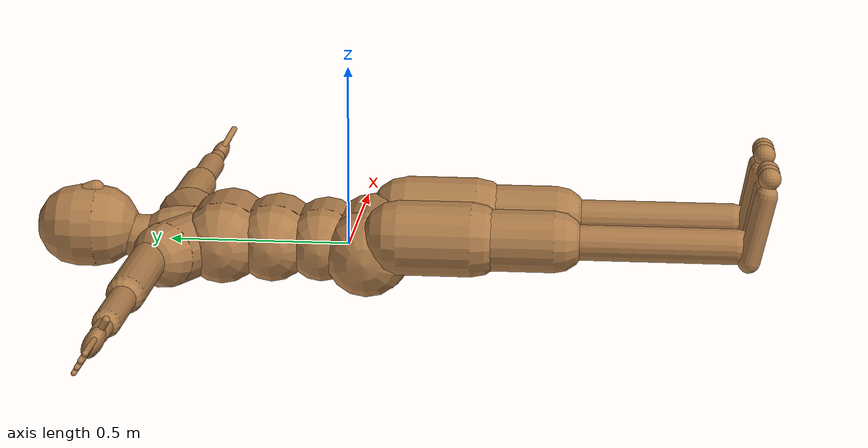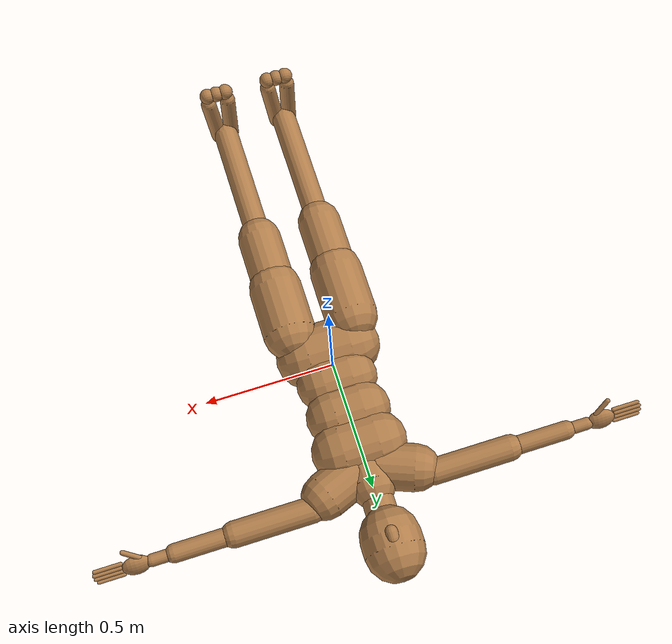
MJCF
<!--
  The CMU Humanoid from dm_control, V2020 and position-controlled, adapted for AMASS
  (change rest pose (i.e., joints in "0" position) and a few rotation axes).
-->
<mujoco model="humanoid_AMASS">
  <compiler boundmass="1e-05" boundinertia="1e-11" coordinate="local" angle="radian" eulerseq="xyz"/>
  <size njmax="500" nconmax="500"/>

  <option timestep=".005"/>
  <custom>
    <numeric name="frameskip" data="6"/>
  </custom>
  <visual>
    <quality shadowsize="8192"/>
    <global offheight="1024" offwidth="1024"/>
  </visual>

  <asset>
    <material name="self" rgba=".7 .5 .3 1.0"/>
  </asset>

  <default>
    <joint limited="true" solimplimit="0 0.99 0.01" stiffness="1" armature=".01" damping="1"/>
    <geom size="0.03 0 0" condim="1" friction="0.7 0.005 0.0001" solref="0.015 1" solimp="0.99 0.99 0.003" density="674.0490479671504"/>
    <general forcelimited="true" ctrllimited="true" ctrlrange="-1 1"/>
    <default class="humanoid">
      <geom type="capsule" material="self" group="2"/>
      <default class="stiff_medium">
        <joint stiffness="10" damping="2"/>
      </default>
      <default class="stiff_medium_higher">
        <joint stiffness="50" damping="4"/>
      </default>
      <default class="stiff_high">
        <joint stiffness="200" damping="5"/>
      </default>
      <default class="sensor_site">
        <site type="sphere" size="0.01" group="4" rgba="1 0 0 .5"/>
      </default>
      <default class="skeleton_site">
        <site type="sphere" size="0.03" group="1" rgba="1 0 0 .0"/>
      </default>
      <default class="joint_site">
        <site type="sphere" size="0.03" group="1" rgba="0 1 0 .0"/>
      </default>
      <default class="contact">
        <geom condim="3" friction="1. 0.005 0.0001" solref="0.015 1" solimp="0.98 0.98 0.001" priority="1"/>
      </default>
    </default>
  </default>

  <worldbody>
    <body name="torso" childclass="humanoid">
      <camera name="track" mode="trackcom" pos="0 -4 0" xyaxes="1 0 0 0 0 1"/>
      <camera name="track2" mode="trackcom" pos="3 -3 0" xyaxes="1 1 0 0 0 1"/>
      <camera name="track3" mode="trackcom" pos="3 0 0" xyaxes="0 1 0 0 0 1"/>
      <camera name="bodycam" pos="0 .3 .1" xyaxes="-1 0 0 0 1 0" fovy="80"/>
      <freejoint name="root"/>
      <site name="j_root" class="joint_site"/>
      <site name="root" size=".01" rgba="0.5 0.5 0.5 0"/>
      <geom name="torso" size="0.12 0.084" pos="0 -0.06 0" quat="1 0 -1 0"/>
      <body name="lhipjoint">
        <geom name="lhipjoint" size="0.0095999999999999992 0.026248356" density="674.0490479671504" pos="0.0611622 -0.055084439999999998 0.029667599999999995" quat="0.57079999999999997 -0.56660200000000005 -0.59426400000000001 0"/>
        <body name="lfemur" pos="0.1223244 -0.11016888 0.059335319999999997">
          <joint name="lfemurrz" class="stiff_medium" pos="0 0 0" axis="0 0 1" range="-1.0471999999999999 1.22173" damping="10.0"/>
          <joint name="lfemurry" class="stiff_medium" pos="0 0 0" axis="0 1 0" range="-1.22173 1.22173" damping="10.0"/>
          <joint name="lfemurrx" class="stiff_medium" pos="0 0 0" axis="1 0 0" range="-2.7925300000000002 0.34906599999999999" damping="15.0"/>
          <site name="j_lhip" class="joint_site"/>
          <geom name="lfemur_upper" size="0.10200000000000001 0.099600000000000008" mass="0.0" pos="0 -0.13856760000000001 0" quat="0.69636399999999998 -0.69636399999999998 -0.12278799999999999 -0.12278799999999999"/>
          <geom name="lfemur" size="0.084000000000000005 0.21867119999999998" density="674.0490479671504" pos="0 -0.24296759999999998 0" quat="0.69636399999999998 -0.69636399999999998 -0.12278799999999999 -0.12278799999999999"/>
          <body name="ltibia" pos="0 -0.48593399999999998 0">
            <joint name="ltibiarx" pos="0 0 0" axis="1 0 0" range="0.01 2.96706" damping="8.0"/>
            <site name="j_lknee" class="joint_site"/>
            <geom name="ltibia" size="0.048000000000000001 0.21907368000000002" density="674.0490479671504" pos="0 -0.2434152 0" quat="0.69636399999999998 -0.69636399999999998 -0.12278799999999999 -0.12278799999999999"/>
            <body name="lfoot" pos="0 -0.49883159999999993 0" quat="1 -1 0 0">
              <site name="lfoot_touch" class="sensor_site" type="capsule" size="0.029999999999999999 0.012" pos="0 0.024 -0.017999999999999999" zaxis="1 0 0"/>
              <joint name="lfootrz" class="stiff_medium" pos="0 0 0" axis="0 0 1" range="-1.22173 0.34906599999999999" damping="3.0"/>
              <joint name="lfootrx" class="stiff_medium" pos="0 0 0" axis="1 0 0" range="-0.78539800000000004 0.80000000000000004" damping="6.0"/>
              <site name="j_lankle" class="joint_site"/>
              <geom name="lfoot" class="contact" size="0.029999999999999999 0.096000000000000002" density="674.0490479671504" pos="-0.03239999700072 -0.059999999999999998 -0.01366536" quat="0.76725516000000005 -0.64051113999999998 0.023064870000000001 -0.023065829999999999"/>
              <geom name="lfoot_ch" class="contact" size="0.029999999999999999 0.096000000000000002" density="674.0490479671504" pos="0.032400002999279996 -0.059999999999999998 -0.01366536" quat="0.72887265999999995 -0.59399462000000003 -0.24074282999999999 -0.2407425"/>
              <body name="ltoes" pos="0 -0.18764640000000002 -0.027330719999999999">
                <joint name="ltoesrx" pos="0 0 0" axis="1 0 0" range="-1.5708 0.34906599999999999" damping="1.0"/>
                <site name="j_ltoe" class="joint_site"/>
                <geom name="ltoes0" class="contact" type="sphere" size="0.029999999999999999" density="674.0490479671504" pos="0 -0.012 -0.012"/>
                <geom name="ltoes1" class="contact" type="sphere" size="0.029999999999999999" density="674.0490479671504" pos="0.035999999999999997 -0.012 -0.012"/>
                <geom name="ltoes2" class="contact" type="sphere" size="0.029999999999999999" density="674.0490479671504" pos="-0.035999999999999997 -0.012 -0.012"/>
                <site name="ltoes_touch" class="sensor_site" type="capsule" size="0.029999999999999999 0.035999999999999997" pos="0 -0.012 -0.024" zaxis="1 0 0"/>
              </body>
            </body>
          </body>
        </body>
      </body>
      <body name="rhipjoint">
        <geom name="rhipjoint" size="0.0095999999999999992 0.026248356" density="674.0490479671504" pos="-0.0611622 -0.055084439999999998 0.029667599999999995" quat="0.57485600000000003 -0.54759400000000003 0.60801400000000005 0"/>
        <body name="rfemur" pos="-0.1223244 -0.11016888 0.059335319999999997">
          <joint name="rfemurrz" class="stiff_medium" pos="0 0 0" axis="0 0 1" range="-1.22173 1.0471999999999999" damping="10.0"/>
          <joint name="rfemurry" class="stiff_medium" pos="0 0 0" axis="0 1 0" range="-1.22173 1.22173" damping="10.0"/>
          <joint name="rfemurrx" class="stiff_medium" pos="0 0 0" axis="1 0 0" range="-2.7925300000000002 0.34906599999999999" damping="15.0"/>
          <site name="j_rhip" class="joint_site"/>
          <geom name="rfemur_upper" size="0.10200000000000001 0.099600000000000008" mass="0.0" pos="0 -0.13856760000000001 0" quat="0.69636399999999998 -0.69636399999999998 0.12278799999999999 0.12278799999999999"/>
          <geom name="rfemur" size="0.084000000000000005 0.21867119999999998" density="674.0490479671504" pos="0 -0.24296759999999998 0" quat="0.69636399999999998 -0.69636399999999998 0.12278799999999999 0.12278799999999999"/>
          <body name="rtibia" pos="0 -0.48593399999999998 0">
            <joint name="rtibiarx" pos="0 0 0" axis="1 0 0" range="0.01 2.96706" damping="8.0"/>
            <site name="j_rknee" class="joint_site"/>
            <geom name="rtibia" size="0.048000000000000001 0.21907368000000002" density="674.0490479671504" pos="0 -0.2434152 0" quat="0.69636399999999998 -0.69636399999999998 0.12278799999999999 0.12278799999999999"/>
            <body name="rfoot" pos="0 -0.49883159999999993 0" quat="0.70710700000000004 -0.70710700000000004 0 0">
              <site name="rfoot_touch" class="sensor_site" type="capsule" size="0.029999999999999999 0.012" pos="0 0.024 -0.017999999999999999" zaxis="1 0 0"/>
              <joint name="rfootrz" class="stiff_medium" pos="0 0 0" axis="0 0 1" range="-0.34906599999999999 1.22173" damping="3.0"/>
              <joint name="rfootrx" class="stiff_medium" pos="0 0 0" axis="1 0 0" range="-0.78539800000000004 0.80000000000000004" damping="6.0"/>
              <site name="j_rankle" class="joint_site"/>
              <geom name="rfoot" class="contact" size="0.029999999999999999 0.096000000000000002" density="674.0490479671504" pos="-0.032399995837919998 -0.059999999999999998 -0.01366536" quat="0.73520686999999996 -0.58633522999999999 0.24050108000000001 0.24050078999999999"/>
              <geom name="rfoot_ch" class="contact" size="0.029999999999999999 0.096000000000000002" density="674.0490479671504" pos="0.032400004162079998 -0.059999999999999998 -0.01366536" quat="0.77312468999999995 -0.63323099999999999 -0.025458459999999999 0.025458359999999999"/>
              <body name="rtoes" pos="0 -0.18764640000000002 -0.027330719999999999">
                <joint name="rtoesrx" pos="0 0 0" axis="1 0 0" range="-1.5708 0.34906599999999999" damping="1.0"/>
                <site name="j_rtoe" class="joint_site"/>
                <geom name="rtoes0" class="contact" type="sphere" size="0.029999999999999999" density="674.0490479671504" pos="0 -0.012 -0.012"/>
                <geom name="rtoes1" class="contact" type="sphere" size="0.029999999999999999" density="674.0490479671504" pos="0.035999999999999997 -0.012 -0.012"/>
                <geom name="rtoes2" class="contact" type="sphere" size="0.029999999999999999" density="674.0490479671504" pos="-0.035999999999999997 -0.012 -0.012"/>
                <site name="rtoes_touch" class="sensor_site" type="capsule" size="0.029999999999999999 0.035999999999999997" pos="0 -0.012 -0.024" zaxis="1 0 0"/>
              </body>
            </body>
          </body>
        </body>
      </body>
      <body name="lowerback">
        <joint name="lowerbackrz" class="stiff_high" pos="0 0 0" axis="0 0 1" range="-0.52359900000000004 0.52359900000000004" damping="20.0"/>
        <joint name="lowerbackry" class="stiff_high" pos="0 0 0" axis="0 1 0" range="-0.52359900000000004 0.52359900000000004" damping="20.0"/>
        <joint name="lowerbackrx" class="stiff_medium" pos="0 0 0" axis="1 0 0" range="-0.34906599999999999 0.78539800000000004" damping="15.0"/>
        <site name="j_lowerback" class="joint_site"/>
        <geom name="lowerback" size="0.10200000000000001 0.054480192000000004" density="674.0490479671504" pos="0.0033951719999999997 0.067927799999999997 0.012" quat="1 0 1 0"/>
        <body name="upperback" pos="0.00067903439999999994 0.13585559999999999 -0.0096635759999999984">
          <joint name="upperbackrz" class="stiff_high" pos="0 0 0" axis="0 0 1" range="-0.52359900000000004 0.52359900000000004" damping="12.0"/>
          <joint name="upperbackry" class="stiff_high" pos="0 0 0" axis="0 1 0" range="-0.52359900000000004 0.52359900000000004" damping="8.0"/>
          <joint name="upperbackrx" class="stiff_medium" pos="0 0 0" axis="1 0 0" range="-0.34906599999999999 0.78539800000000004" damping="15.0"/>
          <site name="j_upperback" class="joint_site"/>
          <geom name="upperback" size="0.108 0.054511391999999999" density="674.0490479671504" pos="0.00030751680000000003 0.068136240000000001 0.024" quat="1 0 1 0"/>
          <body name="thorax" pos="0.00061503360000000006 0.13627199999999998 0.0011241852000000001">
            <joint name="thoraxrz" class="stiff_high" pos="0 0 0" axis="0 0 1" range="-0.52359900000000004 0.52359900000000004" damping="12.0"/>
            <joint name="thoraxry" class="stiff_high" pos="0 0 0" axis="0 1 0" range="-0.52359900000000004 0.52359900000000004" damping="8.0"/>
            <joint name="thoraxrx" class="stiff_medium" pos="0 0 0" axis="1 0 0" range="-0.34906599999999999 0.78539800000000004" damping="15.0"/>
            <site name="j_chest" class="joint_site"/>
            <geom name="thorax" size="0.11399999999999999 0.068424719999999994" density="674.0490479671504" pos="0 0.068366999999999997 0.024" quat="1 0 1 0"/>
            <body name="lowerneck" pos="0 0.13673399999999999 0.0056164439999999991">
              <joint name="lowerneckrz" class="stiff_medium_higher" pos="0 0 0" axis="0 0 1" range="-0.52359900000000004 0.52359900000000004" damping="20.0"/>
              <joint name="lowerneckry" class="stiff_medium_higher" pos="0 0 0" axis="0 1 0" range="-0.52359900000000004 0.52359900000000004" damping="20.0"/>
              <joint name="lowerneckrx" class="stiff_medium_higher" pos="0 0 0" axis="1 0 0" range="-0.34906599999999999 0.78539800000000004" damping="20.0"/>
              <site name="j_lowerneck" class="joint_site"/>
              <geom name="lowerneck" size="0.089999999999999997 0.027350699999999999" density="674.0490479671504" pos="-0.001980852 0.054288119999999995 0.0064123079999999994" quat="1 1 0 0"/>
              <body name="upperneck" pos="-0.0039617159999999997 0.10857611999999998 0.01282464">
                <joint name="upperneckrz" class="stiff_medium_higher" pos="0 0 0" axis="0 0 1" range="-0.52359900000000004 0.52359900000000004" damping="10.0"/>
                <joint name="upperneckry" class="stiff_medium_higher" pos="0 0 0" axis="0 1 0" range="-0.52359900000000004 0.52359900000000004" damping="10.0"/>
                <joint name="upperneckrx" class="stiff_medium_higher" pos="0 0 0" axis="1 0 0" range="-0.34906599999999999 0.78539800000000004" damping="10.0"/>
                <site name="j_upperneck" class="joint_site"/>
                <geom name="upperneck" size="0.059999999999999998 0.02703264" density="674.0490479671504" pos="0.00060105 0.053994719999999996 -0.0026957280000000001" quat="1 1 0 0"/>
                <body name="head" pos="0.0012021 0.156 -0.0053914560000000002">
                  <camera name="egocentric" fovy="80.0" pos="0 0 0" xyaxes="-1 0 0 0 1 0"/>
                  <joint name="headrz" class="stiff_medium_higher" pos="0 0 0" axis="0 0 1" range="-0.52359900000000004 0.52359900000000004" damping="2.0"/>
                  <joint name="headry" class="stiff_medium_higher" pos="0 0 0" axis="0 1 0" range="-0.52359900000000004 0.52359900000000004" damping="2.0"/>
                  <joint name="headrx" class="stiff_medium_higher" pos="0 0 0" axis="1 0 0" range="-0.34906599999999999 0.78539800000000004" damping="2.0"/>
                  <geom name="head" size="0.11399999999999999 0.028924800000000001" density="674.0490479671504" pos="0.00040975799999999998 0.057820799999999992 0.029999999999999999" quat="1 1 0 0"/>
                  <geom name="face" type="capsule" contype="0" conaffinity="0" size="0.078 0.016799999999999999" mass="0.0" pos="0.00040975799999999998 0.057820799999999992 0.012" quat="0.71788700000000005 0.69614200000000004 -0.0049333399999999996 0"/>
                  <body name="face" pos="0 0.046800000000000001 0.13200000000000001">
                    <geom name="nose" type="capsule" contype="0" conaffinity="0" group="1" size="0.024 0.012" mass="0.0" pos="0 0 0" quat="1 0.69999999999999996 0 0"/>
                  </body>
                </body>
              </body>
            </body>
            <body name="lclavicle" pos="0 0.13673399999999999 0.0056164439999999991">
              <joint name="lclaviclerz" class="stiff_high" pos="0 0 0" axis="0 0 1" range="0 0.34906599999999999" damping="20.0"/>
              <joint name="lclaviclery" class="stiff_high" pos="0 0 0" axis="0 1 0" range="-0.34906599999999999 0.17453299999999999" damping="20.0"/>
              <site name="j_lclavicle" class="joint_site"/>
              <geom name="lclavicle" size="0.089999999999999997 0.071999999999999995" density="674.0490479671504" pos="0.11025803999999999 0.045916320000000004 0.0064284480000000007" quat="0.68799999999999994 0.27900000000000003 -0.67000000000000004 0"/>
              <body name="lhumerus" pos="0.216 0.108 0.012856920000000001" quat="0 -0.707 0.707 0">
                <joint name="lhumerusrz" class="stiff_medium" pos="0 0 0" axis="0 0 -1" range="-1.5708 1.1000000000000001 " damping="6.0"/>
                <joint name="lhumerusry" class="stiff_medium" pos="0 0 0" axis="0 -1 0" range="-1.5708 1.5708" damping="6.0"/>
                <joint name="lhumerusrx" class="stiff_medium" pos="0 0 0" axis="-1 0 0" range="-1.5708 1.0471999999999999" damping="6.0"/>
                <site name="j_lshoulder" class="joint_site"/>
                <site name="lhumerus_ft" class="sensor_site"/>
                <geom name="lhumerus" size="0.0504 0.14949467999999999" density="674.0490479671504" pos="0 -0.16610519999999998 0" quat="0.61237200000000003 -0.61237200000000003 0.35355300000000001 0.35355300000000001"/>
                <body name="lradius" pos="0 -0.3322116 0">
                  <joint name="lradiusrx" pos="0 0 0" axis="-1 0 0" range="-2.96706 0.17453299999999999" damping="5.0"/>
                  <site name="j_lelbow" class="joint_site"/>
                  <geom name="lradius" size="0.035999999999999997 0.098029331999999997" density="674.0490479671504" pos="0 -0.10892148 0" quat="0.61237200000000003 -0.61237200000000003 0.35355300000000001 0.35355300000000001"/>
                  <site name="lwrist" pos="0 -0.21784319999999999 0" quat="-0.5 0 0.86602500000000004 0"/>
                  <body name="lwrist" pos="0 -0.21784319999999999 0" quat="-0.5 0 0.86602500000000004 0">
                    <joint name="lwristry" pos="0 0 0" axis="0 1 0" range="0 3.1415899999999999" damping="1.0"/>
                    <site name="j_lwrist" class="joint_site"/>
                    <geom name="lwrist" size="0.024 0.035999999999999997" density="674.0490479671504" pos="0 -0.035999999999999997 0" quat="1.59389e-11 -1.5938800000000001e-11 -0.70710700000000004 -0.70710700000000004"/>
                    <body name="lhand" pos="0 -0.10892112 0">
                      <joint name="lhandrz" pos="0 0 0" axis="0 0 1" range="-0.78539800000000004 0.78539800000000004" damping="1.0"/>
                      <joint name="lhandrx" pos="0 0 0" axis="1 0 0" range="-1.5708 1.5708" damping="1.0"/>
                      <site name="lhand_touch" class="sensor_site" type="ellipsoid" size="0.0144 0.0060000000000000001 0.017999999999999999" pos="0 -0.020102399999999999 -0.024" quat="0 0 -1 -1"/>
                      <geom name="lhand" class="contact" type="ellipsoid" size="0.042000000000000003 0.024 0.053999999999999999" density="674.0490479671504" pos="0 -0.020102399999999999 0" quat="0 0 -1 -1"/>
                      <body name="lfingers" pos="0 -0.089999999999999997 0">
                        <joint name="lfingersrx" pos="0 0.017999999999999999 0" axis="1 0 0" range="0 1.5708" damping="1.0"/>
                        <site name="lfingers_touch" class="sensor_site" type="box" size="0.0276 0.015599999999999999 0.0035999999999999999" pos="0 -0.0504 -0.0083999999999999995"/>
                        <geom name="lfinger0" class="contact" size="0.0077999999999999996 0.048000000000000001" density="674.0490479671504" pos="-0.028799999999999999 -0.029999999999999999 0" quat="1 -1 0 0"/>
                        <geom name="lfinger1" class="contact" size="0.0077999999999999996 0.048000000000000001" density="674.0490479671504" pos="-0.0095999999999999992 -0.035999999999999997 0" quat="1 -1 0 0"/>
                        <geom name="lfinger2" class="contact" size="0.0071999999999999998 0.048000000000000001" density="674.0490479671504" pos="0.0095999999999999992 -0.035999999999999997 0" quat="1 -1 0 0"/>
                        <geom name="lfinger3" class="contact" size="0.0065999999999999991 0.048000000000000001" density="674.0490479671504" pos="0.028799999999999999 -0.029999999999999999 0" quat="1 -1 0 0"/>
                      </body>
                      <body name="lthumb" pos="-0.029999999999999999 0 0" quat="0.92388000000000003 0 0 -0.382683">
                        <joint name="lthumbrz" pos="0 0 0" axis="0 0 1" range="-0.78539800000000004 0.78539800000000004" damping="1.0"/>
                        <joint name="lthumbrx" pos="0 0 0" axis="1 0 0" range="0 1.5700000000000001" damping="1.0"/>
                        <site name="lthumb_touch" class="sensor_site" type="box" size="0.0071999999999999998 0.015599999999999999 0.0035999999999999999" pos="0 -0.051599999999999993 -0.0083999999999999995"/>
                        <geom name="lthumb" class="contact" size="0.0095999999999999992 0.035999999999999997" density="674.0490479671504" pos="0 -0.035999999999999997 0" quat="0 0 -1 -1"/>
                      </body>
                    </body>
                  </body>
                </body>
              </body>
            </body>
            <body name="rclavicle" pos="0 0.13673399999999999 0.0056164439999999991">
              <joint name="rclaviclerz" class="stiff_high" pos="0 0 0" axis="0 0 1" range="-0.34906599999999999 0" damping="20.0"/>
              <joint name="rclaviclery" class="stiff_high" pos="0 0 0" axis="0 1 0" range="-0.17453299999999999 0.34906599999999999" damping="20.0"/>
              <site name="j_rclavicle" class="joint_site"/>
              <geom name="rclavicle" size="0.089999999999999997 0.071999999999999995" density="674.0490479671504" pos="-0.11025803999999999 0.045916320000000004 0.0064284480000000007" quat="0.68799999999999994 0.27900000000000003 0.67000000000000004 0"/>
              <body name="rhumerus" pos="-0.216 0.108 0.012856920000000001" quat="0 -0.707 -0.707 0">
                <joint name="rhumerusrz" class="stiff_medium" pos="0 0 0" axis="0 0 -1" range="-1.1000000000000001 1.5708" damping="6.0"/>
                <joint name="rhumerusry" class="stiff_medium" pos="0 0 0" axis="0 1 0" range="-1.5708 1.5708" damping="6.0"/>
                <joint name="rhumerusrx" class="stiff_medium" pos="0 0 0" axis="1 0 0" range="-1.0471999999999999 1.5708" damping="6.0"/>
                <site name="j_rshoulder" class="joint_site"/>
                <site name="rhumerus_ft" class="sensor_site"/>
                <geom name="rhumerus" size="0.0504 0.14949467999999999" density="674.0490479671504" pos="0 -0.16610519999999998 0" quat="0.61237200000000003 -0.61237200000000003 -0.35355300000000001 -0.35355300000000001"/>
                <body name="rradius" pos="0 -0.3322116 0">
                  <joint name="rradiusrx" pos="0 0 0" axis="1 0 0" range="-0.17453299999999999 2.96706" damping="5.0"/>
                  <site name="j_relbow" class="joint_site"/>
                  <geom name="rradius" size="0.035999999999999997 0.098029331999999997" density="674.0490479671504" pos="0 -0.10892148 0" quat="0.61238000000000004 -0.61237200000000003 -0.35355399999999998 -0.35354099999999999"/>
                  <body name="rwrist" pos="0 -0.21784319999999999 0" quat="-0.5 0 -0.86602500000000004 0">
                    <joint name="rwristry" pos="0 0 0" axis="0 1 0" range="-3.1415899999999999 0" damping="1.0"/>
                    <site name="j_rwrist" class="joint_site"/>
                    <geom name="rwrist" size="0.024 0.035999999999999997" density="674.0490479671504" pos="0 -0.035999999999999997 0" quat="0 0 1 1"/>
                    <body name="rhand" pos="0 -0.10892112 0">
                      <joint name="rhandrz" pos="0 0 0" axis="0 0 1" range="-0.78539800000000004 0.78539800000000004" damping="1.0"/>
                      <joint name="rhandrx" pos="0 0 0" axis="1 0 0" range="-1.5708 1.5708" damping="1.0"/>
                      <site name="rhand_touch" class="sensor_site" type="ellipsoid" size="0.0144 0.0060000000000000001 0.017999999999999999" pos="0 -0.020102399999999999 -0.024" quat="0 0 1 1"/>
                      <geom name="rhand" class="contact" type="ellipsoid" size="0.042000000000000003 0.024 0.053999999999999999" density="674.0490479671504" pos="0 -0.020102399999999999 0" quat="0 0 1 1"/>
                      <body name="rfingers" pos="0 -0.089999999999999997 0">
                        <joint name="rfingersrx" pos="0 0.017999999999999999 0" axis="1 0 0" range="0 1.5708" damping="1.0"/>
                        <site name="rfingers_touch" class="sensor_site" type="box" size="0.0276 0.015599999999999999 0.0035999999999999999" pos="0 -0.0504 -0.0083999999999999995"/>
                        <geom name="rfinger0" class="contact" size="0.0077999999999999996 0.048000000000000001" density="674.0490479671504" pos="0.028799999999999999 -0.029999999999999999 0" quat="1 -1 0 0"/>
                        <geom name="rfinger1" class="contact" size="0.0077999999999999996 0.048000000000000001" density="674.0490479671504" pos="0.0095999999999999992 -0.035999999999999997 0" quat="1 -1 0 0"/>
                        <geom name="rfinger2" class="contact" size="0.0071999999999999998 0.048000000000000001" density="674.0490479671504" pos="-0.0095999999999999992 -0.035999999999999997 0" quat="1 -1 0 0"/>
                        <geom name="rfinger3" class="contact" size="0.0065999999999999991 0.048000000000000001" density="674.0490479671504" pos="-0.028799999999999999 -0.029999999999999999 0" quat="1 -1 0 0"/>
                      </body>
                      <body name="rthumb" pos="0.029999999999999999 0 0" quat="0.92388000000000003 0 0 0.382683">
                        <joint name="rthumbrz" pos="0 0 0" axis="0 0 1" range="-0.78539800000000004 0.78539800000000004" damping="1.0"/>
                        <joint name="rthumbrx" pos="0 0 0" axis="1 0 0" range="0 1.5700000000000001" damping="1.0"/>
                        <site name="rthumb_touch" class="sensor_site" type="box" size="0.0071999999999999998 0.015599999999999999 0.0035999999999999999" pos="0 -0.051599999999999993 -0.0083999999999999995"/>
                        <geom name="rthumb" class="contact" size="0.0095999999999999992 0.035999999999999997" density="674.0490479671504" pos="0 -0.035999999999999997 0" quat="6.2177300000000004e-11 -6.3528400000000006e-11 0.70710700000000004 0.70710700000000004"/>
                      </body>
                    </body>
                  </body>
                </body>
              </body>
            </body>
          </body>
        </body>
      </body>
    </body>
  </worldbody>

  <contact>
    <exclude body1="lclavicle" body2="rclavicle"/>
    <exclude body1="lowerneck" body2="lclavicle"/>
    <exclude body1="lowerneck" body2="rclavicle"/>
    <exclude body1="upperneck" body2="lclavicle"/>
    <exclude body1="upperneck" body2="rclavicle"/>
  </contact>

  <actuator>
    <general name="headrx" ctrllimited="true" ctrlrange="-1 1" forcerange="-40 40" joint="headrx" dyntype="filter" biastype="affine" dynprm="0.029999999999999999" gainprm="22.689279999999997" biasprm="8.7266399999999997 -40 0"/>
    <general name="headry" ctrllimited="true" ctrlrange="-1 1" forcerange="-40 40" joint="headry" dyntype="filter" biastype="affine" dynprm="0.029999999999999999" gainprm="20.943960000000001" biasprm="0 -40 0"/>
    <general name="headrz" ctrllimited="true" ctrlrange="-1 1" forcerange="-40 40" joint="headrz" dyntype="filter" biastype="affine" dynprm="0.029999999999999999" gainprm="20.943960000000001" biasprm="0 -40 0"/>
    <general name="lclaviclery" ctrllimited="true" ctrlrange="-1 1" forcerange="-80 80" joint="lclaviclery" dyntype="filter" biastype="affine" dynprm="0.029999999999999999" gainprm="20.943959999999997" biasprm="-6.981320000000002 -80 0"/>
    <general name="lclaviclerz" ctrllimited="true" ctrlrange="-1 1" forcerange="-80 80" joint="lclaviclerz" dyntype="filter" biastype="affine" dynprm="0.029999999999999999" gainprm="13.96264" biasprm="13.96264 -80 0"/>
    <general name="lfemurrx" ctrllimited="true" ctrlrange="-1 1" forcerange="-300 300" joint="lfemurrx" dyntype="filter" biastype="affine" dynprm="0.029999999999999999" gainprm="471.23940000000005" biasprm="-366.51960000000003 -300 0"/>
    <general name="lfemurry" ctrllimited="true" ctrlrange="-1 1" forcerange="-200 200" joint="lfemurry" dyntype="filter" biastype="affine" dynprm="0.029999999999999999" gainprm="244.346" biasprm="0 -200 0"/>
    <general name="lfemurrz" ctrllimited="true" ctrlrange="-1 1" forcerange="-200 200" joint="lfemurrz" dyntype="filter" biastype="affine" dynprm="0.029999999999999999" gainprm="226.88999999999999" biasprm="87.269999999999982 -200 0"/>
    <general name="lfingersrx" ctrllimited="true" ctrlrange="-1 1" forcerange="-20 20" joint="lfingersrx" dyntype="filter" biastype="affine" dynprm="0.029999999999999999" gainprm="15.708" biasprm="15.708 -20 0"/>
    <general name="lfootrx" ctrllimited="true" ctrlrange="-1 1" forcerange="-120 120" joint="lfootrx" dyntype="filter" biastype="affine" dynprm="0.029999999999999999" gainprm="95.12388" biasprm="0.87612000000000023 -120 0"/>
    <general name="lfootrz" ctrllimited="true" ctrlrange="-1 1" forcerange="-50 50" joint="lfootrz" dyntype="filter" biastype="affine" dynprm="0.029999999999999999" gainprm="39.2699" biasprm="-21.816599999999998 -50 0"/>
    <general name="lhandrx" ctrllimited="true" ctrlrange="-1 1" forcerange="-20 20" joint="lhandrx" dyntype="filter" biastype="affine" dynprm="0.029999999999999999" gainprm="31.416" biasprm="0 -20 0"/>
    <general name="lhandrz" ctrllimited="true" ctrlrange="-1 1" forcerange="-20 20" joint="lhandrz" dyntype="filter" biastype="affine" dynprm="0.029999999999999999" gainprm="15.70796" biasprm="0 -20 0"/>
    <general name="lhumerusrx" ctrllimited="true" ctrlrange="-1 1" forcerange="-120 120" joint="lhumerusrx" dyntype="filter" biastype="affine" dynprm="0.029999999999999999" gainprm="157.07999999999998" biasprm="-31.416000000000004 -120 0"/>
    <general name="lhumerusry" ctrllimited="true" ctrlrange="-1 1" forcerange="-120 120" joint="lhumerusry" dyntype="filter" biastype="affine" dynprm="0.029999999999999999" gainprm="188.49600000000001" biasprm="0 -120 0"/>
    <general name="lhumerusrz" ctrllimited="true" ctrlrange="-1 1" forcerange="-120 120" joint="lhumerusrz" dyntype="filter" biastype="affine" dynprm="0.029999999999999999" gainprm="28.247999999999994" biasprm="-160.24799999999999 -120 0"/>
    <general name="lowerbackrx" ctrllimited="true" ctrlrange="-1 1" forcerange="-300 300" joint="lowerbackrx" dyntype="filter" biastype="affine" dynprm="0.029999999999999999" gainprm="170.16959999999997" biasprm="65.449799999999996 -300 0"/>
    <general name="lowerbackry" ctrllimited="true" ctrlrange="-1 1" forcerange="-180 180" joint="lowerbackry" dyntype="filter" biastype="affine" dynprm="0.029999999999999999" gainprm="94.247820000000004" biasprm="0 -180 0"/>
    <general name="lowerbackrz" ctrllimited="true" ctrlrange="-1 1" forcerange="-200 200" joint="lowerbackrz" dyntype="filter" biastype="affine" dynprm="0.029999999999999999" gainprm="104.71980000000001" biasprm="0 -200 0"/>
    <general name="lowerneckrx" ctrllimited="true" ctrlrange="-1 1" forcerange="-120 120" joint="lowerneckrx" dyntype="filter" biastype="affine" dynprm="0.029999999999999999" gainprm="68.06783999999999" biasprm="26.179919999999996 -120 0"/>
    <general name="lowerneckry" ctrllimited="true" ctrlrange="-1 1" forcerange="-120 120" joint="lowerneckry" dyntype="filter" biastype="affine" dynprm="0.029999999999999999" gainprm="62.831880000000005" biasprm="0 -120 0"/>
    <general name="lowerneckrz" ctrllimited="true" ctrlrange="-1 1" forcerange="-120 120" joint="lowerneckrz" dyntype="filter" biastype="affine" dynprm="0.029999999999999999" gainprm="62.831880000000005" biasprm="0 -120 0"/>
    <general name="lradiusrx" ctrllimited="true" ctrlrange="-1 1" forcerange="-90 90" joint="lradiusrx" dyntype="filter" biastype="affine" dynprm="0.029999999999999999" gainprm="141.37168499999999" biasprm="-125.66371500000001 -90 0"/>
    <general name="lthumbrx" ctrllimited="true" ctrlrange="-1 1" forcerange="-20 20" joint="lthumbrx" dyntype="filter" biastype="affine" dynprm="0.029999999999999999" gainprm="15.700000000000001" biasprm="15.700000000000001 -20 0"/>
    <general name="lthumbrz" ctrllimited="true" ctrlrange="-1 1" forcerange="-20 20" joint="lthumbrz" dyntype="filter" biastype="affine" dynprm="0.029999999999999999" gainprm="15.70796" biasprm="0 -20 0"/>
    <general name="ltibiarx" ctrllimited="true" ctrlrange="-1 1" forcerange="-160 160" joint="ltibiarx" dyntype="filter" biastype="affine" dynprm="0.029999999999999999" gainprm="236.56480000000002" biasprm="238.16480000000001 -160 0"/>
    <general name="ltoesrx" ctrllimited="true" ctrlrange="-1 1" forcerange="-20 20" joint="ltoesrx" dyntype="filter" biastype="affine" dynprm="0.029999999999999999" gainprm="19.198659999999997" biasprm="-12.21734 -20 0"/>
    <general name="lwristry" ctrllimited="true" ctrlrange="-1 1" forcerange="-20 20" joint="lwristry" dyntype="filter" biastype="affine" dynprm="0.029999999999999999" gainprm="31.415900000000001" biasprm="31.415900000000001 -20 0"/>
    <general name="rclaviclery" ctrllimited="true" ctrlrange="-1 1" forcerange="-80 80" joint="rclaviclery" dyntype="filter" biastype="affine" dynprm="0.029999999999999999" gainprm="20.943959999999997" biasprm="6.9813199999999975 -80 0"/>
    <general name="rclaviclerz" ctrllimited="true" ctrlrange="-1 1" forcerange="-80 80" joint="rclaviclerz" dyntype="filter" biastype="affine" dynprm="0.029999999999999999" gainprm="13.96264" biasprm="-13.96264 -80 0"/>
    <general name="rfemurrx" ctrllimited="true" ctrlrange="-1 1" forcerange="-300 300" joint="rfemurrx" dyntype="filter" biastype="affine" dynprm="0.029999999999999999" gainprm="471.23940000000005" biasprm="-366.51960000000003 -300 0"/>
    <general name="rfemurry" ctrllimited="true" ctrlrange="-1 1" forcerange="-200 200" joint="rfemurry" dyntype="filter" biastype="affine" dynprm="0.029999999999999999" gainprm="244.346" biasprm="0 -200 0"/>
    <general name="rfemurrz" ctrllimited="true" ctrlrange="-1 1" forcerange="-200 200" joint="rfemurrz" dyntype="filter" biastype="affine" dynprm="0.029999999999999999" gainprm="226.88999999999999" biasprm="-87.27000000000001 -200 0"/>
    <general name="rfingersrx" ctrllimited="true" ctrlrange="-1 1" forcerange="-20 20" joint="rfingersrx" dyntype="filter" biastype="affine" dynprm="0.029999999999999999" gainprm="15.708" biasprm="15.708 -20 0"/>
    <general name="rfootrx" ctrllimited="true" ctrlrange="-1 1" forcerange="-120 120" joint="rfootrx" dyntype="filter" biastype="affine" dynprm="0.029999999999999999" gainprm="95.12388" biasprm="0.87612000000000023 -120 0"/>
    <general name="rfootrz" ctrllimited="true" ctrlrange="-1 1" forcerange="-50 50" joint="rfootrz" dyntype="filter" biastype="affine" dynprm="0.029999999999999999" gainprm="39.2699" biasprm="21.816600000000001 -50 0"/>
    <general name="rhandrx" ctrllimited="true" ctrlrange="-1 1" forcerange="-20 20" joint="rhandrx" dyntype="filter" biastype="affine" dynprm="0.029999999999999999" gainprm="31.416" biasprm="0 -20 0"/>
    <general name="rhandrz" ctrllimited="true" ctrlrange="-1 1" forcerange="-20 20" joint="rhandrz" dyntype="filter" biastype="affine" dynprm="0.029999999999999999" gainprm="15.70796" biasprm="0 -20 0"/>
    <general name="rhumerusrx" ctrllimited="true" ctrlrange="-1 1" forcerange="-120 120" joint="rhumerusrx" dyntype="filter" biastype="affine" dynprm="0.029999999999999999" gainprm="157.07999999999998" biasprm="31.416000000000004 -120 0"/>
    <general name="rhumerusry" ctrllimited="true" ctrlrange="-1 1" forcerange="-120 120" joint="rhumerusry" dyntype="filter" biastype="affine" dynprm="0.029999999999999999" gainprm="188.49600000000001" biasprm="0 -120 0"/>
    <general name="rhumerusrz" ctrllimited="true" ctrlrange="-1 1" forcerange="-120 120" joint="rhumerusrz" dyntype="filter" biastype="affine" dynprm="0.029999999999999999" gainprm="160.24799999999999" biasprm="28.24799999999998 -120 0"/>
    <general name="rradiusrx" ctrllimited="true" ctrlrange="-1 1" forcerange="-90 90" joint="rradiusrx" dyntype="filter" biastype="affine" dynprm="0.029999999999999999" gainprm="141.37168499999999" biasprm="125.663715 -90 0"/>
    <general name="rthumbrx" ctrllimited="true" ctrlrange="-1 1" forcerange="-20 20" joint="rthumbrx" dyntype="filter" biastype="affine" dynprm="0.029999999999999999" gainprm="15.700000000000001" biasprm="15.700000000000001 -20 0"/>
    <general name="rthumbrz" ctrllimited="true" ctrlrange="-1 1" forcerange="-20 20" joint="rthumbrz" dyntype="filter" biastype="affine" dynprm="0.029999999999999999" gainprm="15.70796" biasprm="0 -20 0"/>
    <general name="rtibiarx" ctrllimited="true" ctrlrange="-1 1" forcerange="-160 160" joint="rtibiarx" dyntype="filter" biastype="affine" dynprm="0.029999999999999999" gainprm="236.56480000000002" biasprm="238.16480000000001 -160 0"/>
    <general name="rtoesrx" ctrllimited="true" ctrlrange="-1 1" forcerange="-20 20" joint="rtoesrx" dyntype="filter" biastype="affine" dynprm="0.029999999999999999" gainprm="19.198659999999997" biasprm="-12.21734 -20 0"/>
    <general name="rwristry" ctrllimited="true" ctrlrange="-1 1" forcerange="-20 20" joint="rwristry" dyntype="filter" biastype="affine" dynprm="0.029999999999999999" gainprm="31.415900000000001" biasprm="-31.415900000000001 -20 0"/>
    <general name="thoraxrx" ctrllimited="true" ctrlrange="-1 1" forcerange="-300 300" joint="thoraxrx" dyntype="filter" biastype="affine" dynprm="0.029999999999999999" gainprm="170.16959999999997" biasprm="65.449799999999996 -300 0"/>
    <general name="thoraxry" ctrllimited="true" ctrlrange="-1 1" forcerange="-80 80" joint="thoraxry" dyntype="filter" biastype="affine" dynprm="0.029999999999999999" gainprm="41.887920000000001" biasprm="0 -80 0"/>
    <general name="thoraxrz" ctrllimited="true" ctrlrange="-1 1" forcerange="-200 200" joint="thoraxrz" dyntype="filter" biastype="affine" dynprm="0.029999999999999999" gainprm="104.71980000000001" biasprm="0 -200 0"/>
    <general name="upperbackrx" ctrllimited="true" ctrlrange="-1 1" forcerange="-300 300" joint="upperbackrx" dyntype="filter" biastype="affine" dynprm="0.029999999999999999" gainprm="170.16959999999997" biasprm="65.449799999999996 -300 0"/>
    <general name="upperbackry" ctrllimited="true" ctrlrange="-1 1" forcerange="-80 80" joint="upperbackry" dyntype="filter" biastype="affine" dynprm="0.029999999999999999" gainprm="41.887920000000001" biasprm="0 -80 0"/>
    <general name="upperbackrz" ctrllimited="true" ctrlrange="-1 1" forcerange="-200 200" joint="upperbackrz" dyntype="filter" biastype="affine" dynprm="0.029999999999999999" gainprm="104.71980000000001" biasprm="0 -200 0"/>
    <general name="upperneckrx" ctrllimited="true" ctrlrange="-1 1" forcerange="-60 60" joint="upperneckrx" dyntype="filter" biastype="affine" dynprm="0.029999999999999999" gainprm="34.033919999999995" biasprm="13.089959999999998 -60 0"/>
    <general name="upperneckry" ctrllimited="true" ctrlrange="-1 1" forcerange="-60 60" joint="upperneckry" dyntype="filter" biastype="affine" dynprm="0.029999999999999999" gainprm="31.415940000000003" biasprm="0 -60 0"/>
    <general name="upperneckrz" ctrllimited="true" ctrlrange="-1 1" forcerange="-60 60" joint="upperneckrz" dyntype="filter" biastype="affine" dynprm="0.029999999999999999" gainprm="31.415940000000003" biasprm="0 -60 0"/>
  </actuator>

  <sensor>
    <velocimeter name="sensor_root_veloc" site="root"/>
    <gyro name="sensor_root_gyro" site="root"/>
    <accelerometer name="sensor_root_accel" site="root"/>
    <touch name="sensor_touch_lhand" site="lhand_touch"/>
    <touch name="sensor_touch_lfingers" site="lfingers_touch"/>
    <touch name="sensor_touch_lthumb" site="lthumb_touch"/>
    <touch name="sensor_touch_rhand" site="rhand_touch"/>
    <touch name="sensor_touch_rfingers" site="rfingers_touch"/>
    <touch name="sensor_touch_rthumb" site="rthumb_touch"/>
    <touch name="sensor_touch_ltoes" site="ltoes_touch"/>
    <touch name="sensor_touch_rtoes" site="rtoes_touch"/>
    <touch name="sensor_touch_rfoot" site="rfoot_touch"/>
    <touch name="sensor_touch_lfoot" site="lfoot_touch"/>
    <torque name="sensor_torque_lhumerus" site="lhumerus_ft"/>
    <torque name="sensor_torque_rhumerus" site="rhumerus_ft"/>
  </sensor>

</mujoco>
